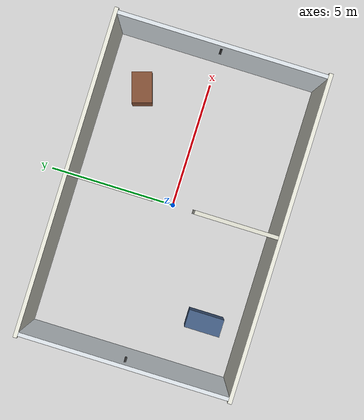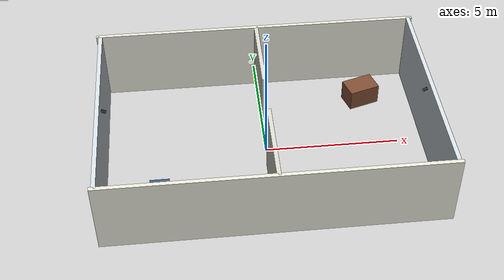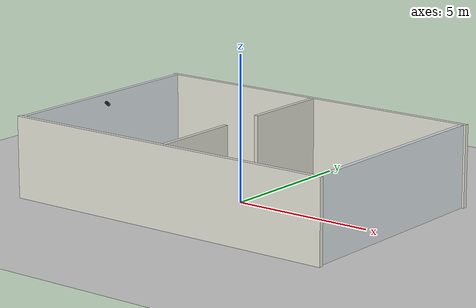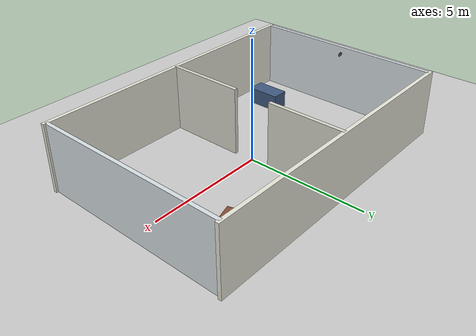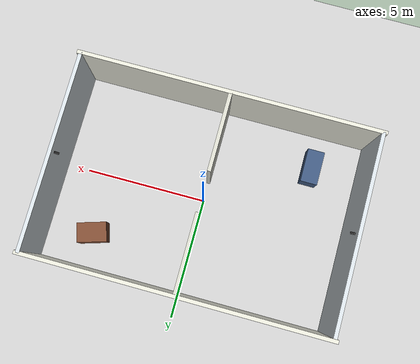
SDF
<sdf version="1.6">
 <world name="two_room_world">
  <include><uri>model://sun</uri></include>
  <model name="ground_plane">
   <static>true</static>
   <link name="link">
    <collision name="collision">
     <geometry><plane><normal>0 0 1</normal><size>30 30</size></plane></geometry>
     <surface><friction><ode><mu>100</mu><mu2>50</mu2></ode></friction></surface>
    </collision>
    <visual name="visual">
     <geometry><plane><normal>0 0 1</normal><size>30 30</size></plane></geometry>
     <material><ambient>0.7 0.7 0.7 1</ambient><diffuse>0.8 0.8 0.8 1</diffuse></material>
    </visual>
   </link>
  </model>
  <model name="outer_walls">
   <static>true</static>
   <link name="wall_north">
    <pose>0 4.0 1.4 0 0 0</pose>
    <collision name="c"><geometry><box><size>12.3 0.15 2.8</size></box></geometry></collision>
    <visual name="v">
     <geometry><box><size>12.3 0.15 2.8</size></box></geometry>
     <material><ambient>0.9 0.9 0.85 1</ambient><diffuse>0.9 0.9 0.85 1</diffuse></material>
    </visual>
   </link>
   <link name="wall_south">
    <pose>0 -4.0 1.4 0 0 0</pose>
    <collision name="c"><geometry><box><size>12.3 0.15 2.8</size></box></geometry></collision>
    <visual name="v">
     <geometry><box><size>12.3 0.15 2.8</size></box></geometry>
     <material><ambient>0.9 0.9 0.85 1</ambient><diffuse>0.9 0.9 0.85 1</diffuse></material>
    </visual>
   </link>
   <link name="wall_east">
    <pose>6.0 0 1.4 0 0 0</pose>
    <collision name="c"><geometry><box><size>0.15 8.0 2.8</size></box></geometry></collision>
    <visual name="v">
     <geometry><box><size>0.15 8.0 2.8</size></box></geometry>
     <material><ambient>0.85 0.88 0.9 1</ambient><diffuse>0.85 0.88 0.9 1</diffuse></material>
    </visual>
   </link>
   <link name="wall_west">
    <pose>-6.0 0 1.4 0 0 0</pose>
    <collision name="c"><geometry><box><size>0.15 8.0 2.8</size></box></geometry></collision>
    <visual name="v">
     <geometry><box><size>0.15 8.0 2.8</size></box></geometry>
     <material><ambient>0.85 0.88 0.9 1</ambient><diffuse>0.85 0.88 0.9 1</diffuse></material>
    </visual>
   </link>
  </model>
  <model name="internal_wall">
   <static>true</static>
   <link name="wall_door_north">
    <pose>0 2.4 1.4 0 0 0</pose>
    <collision name="c"><geometry><box><size>0.15 3.2 2.8</size></box></geometry></collision>
    <visual name="v">
     <geometry><box><size>0.15 3.2 2.8</size></box></geometry>
     <material><ambient>0.8 0.8 0.75 1</ambient><diffuse>0.85 0.85 0.8 1</diffuse></material>
    </visual>
   </link>
   <link name="wall_door_south">
    <pose>0 -2.4 1.4 0 0 0</pose>
    <collision name="c"><geometry><box><size>0.15 3.2 2.8</size></box></geometry></collision>
    <visual name="v">
     <geometry><box><size>0.15 3.2 2.8</size></box></geometry>
     <material><ambient>0.8 0.8 0.75 1</ambient><diffuse>0.85 0.85 0.8 1</diffuse></material>
    </visual>
   </link>
  </model>
  <model name="obstacle_room_a">
   <static>true</static>
   <pose>4.0 2.5 0.4 0 0 0.3</pose>
   <link name="link">
    <collision name="c"><geometry><box><size>1.2 0.8 0.8</size></box></geometry></collision>
    <visual name="v">
     <geometry><box><size>1.2 0.8 0.8</size></box></geometry>
     <material><ambient>0.4 0.25 0.15 1</ambient><diffuse>0.5 0.3 0.2 1</diffuse></material>
    </visual>
   </link>
  </model>
  <model name="obstacle_room_b">
   <static>true</static>
   <pose>-4.0 -2.5 0.35 0 0 0</pose>
   <link name="link">
    <collision name="c"><geometry><box><size>0.7 1.4 0.7</size></box></geometry></collision>
    <visual name="v">
     <geometry><box><size>0.7 1.4 0.7</size></box></geometry>
     <material><ambient>0.2 0.3 0.45 1</ambient><diffuse>0.25 0.35 0.5 1</diffuse></material>
    </visual>
   </link>
  </model>
  <model name="cctv_camera_1">
   <static>true</static>
   <pose>5.8 0 2.5 0 0.55 3.14159</pose>
   <link name="cctv1_link">
    <visual name="body">
     <geometry><box><size>0.18 0.08 0.08</size></box></geometry>
     <material><ambient>0.1 0.1 0.1 1</ambient><diffuse>0.15 0.15 0.15 1</diffuse></material>
    </visual>
    <sensor name="cctv1" type="camera">
     <update_rate>10</update_rate>
     <visualize>false</visualize>
     <camera>
      <horizontal_fov>1.3</horizontal_fov>
      <image><width>640</width><height>480</height><format>R8G8B8</format></image>
      <clip><near>0.05</near><far>20.0</far></clip>
     </camera>
     <plugin name="cctv1_controller" filename="libgazebo_ros_camera.so">
      <frame_name>cctv1_link_optical</frame_name>
     </plugin>
    </sensor>
   </link>
  </model>
  <model name="cctv_camera_2">
   <static>true</static>
   <pose>-5.8 0 2.5 0 0.55 0</pose>
   <link name="cctv2_link">
    <visual name="body">
     <geometry><box><size>0.18 0.08 0.08</size></box></geometry>
     <material><ambient>0.1 0.1 0.1 1</ambient><diffuse>0.15 0.15 0.15 1</diffuse></material>
    </visual>
    <sensor name="cctv2" type="camera">
     <update_rate>10</update_rate>
     <visualize>false</visualize>
     <camera>
      <horizontal_fov>1.3</horizontal_fov>
      <image><width>640</width><height>480</height><format>R8G8B8</format></image>
      <clip><near>0.05</near><far>20.0</far></clip>
     </camera>
     <plugin name="cctv2_controller" filename="libgazebo_ros_camera.so">
      <frame_name>cctv2_link_optical</frame_name>
     </plugin>
    </sensor>
   </link>
  </model>
  <model name="person_1_body">
   <static>true</static>
   <pose>8.0 6.0 0 0 0 0</pose>
   <link name="link">
    <collision name="body">
     <pose>0 0 0.85 0 0 0</pose>
     <geometry><cylinder><radius>0.2</radius><length>1.7</length></cylinder></geometry>
    </collision>
   </link>
  </model>
  <model name="person_2_body">
   <static>true</static>
   <pose>9.0 6.0 0 0 0 0</pose>
   <link name="link">
    <collision name="body">
     <pose>0 0 0.85 0 0 0</pose>
     <geometry><cylinder><radius>0.2</radius><length>1.7</length></cylinder></geometry>
    </collision>
   </link>
  </model>
  <model name="person_3_body">
   <static>true</static>
   <pose>10.0 6.0 0 0 0 0</pose>
   <link name="link">
    <collision name="body">
     <pose>0 0 0.85 0 0 0</pose>
     <geometry><cylinder><radius>0.2</radius><length>1.7</length></cylinder></geometry>
    </collision>
   </link>
  </model>
  <model name="intruder_1_body">
   <static>true</static>
   <pose>11.0 6.0 0 0 0 0</pose>
   <link name="link">
    <collision name="body">
     <pose>0 0 0.85 0 0 0</pose>
     <geometry><cylinder><radius>0.2</radius><length>1.7</length></cylinder></geometry>
    </collision>
   </link>
  </model>
  <plugin name="gazebo_ros_state" filename="libgazebo_ros_state.so">
   <ros><namespace>/gazebo</namespace></ros>
   <update_rate>20.0</update_rate>
  </plugin>
  <physics type="ode">
   <real_time_update_rate>1000.0</real_time_update_rate>
   <max_step_size>0.001</max_step_size>
  </physics>
 </world>
</sdf>
